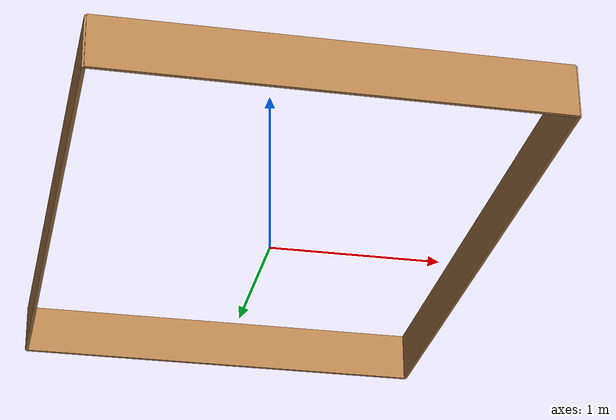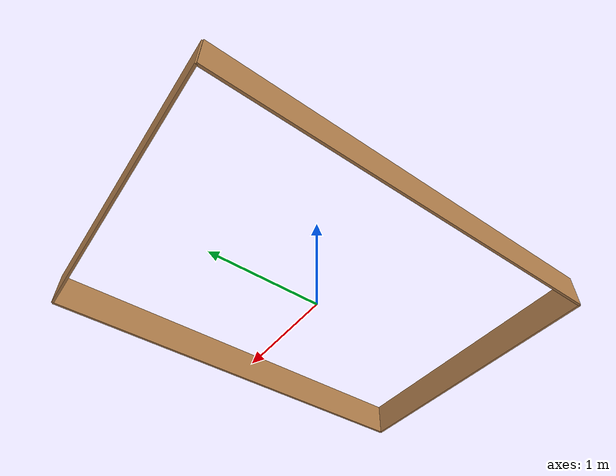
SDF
<?xml version="1.0"?>
<sdf version="1.6">
	<model name="christmas_walls">
		<link name="Wall_North">
			<pose frame=''>1.25 0 0 0 0 -1.5708</pose>
			<self_collide>0</self_collide>
			<kinematic>0</kinematic>

			<visual name="Wall_North_Visual">
				<pose frame=''>0 0 0.15 0 0 0</pose>

				<geometry>
					<box>
						<size>3.5 0.02 0.3</size>
					</box>
				</geometry>

				<material>
					<script>
						<uri>file://media/materials/scripts/gazebo.material</uri>
						<name>Gazebo/Wood</name>
					</script>

					<ambient>1 1 1 1</ambient>
					<diffuse>1 1 1 1</diffuse>
					<specular>0.2 0.2 0.2 1</specular>
					<emissive>0 0 0 1</emissive>
				</material>

				<cast_shadows>1</cast_shadows>
				<transparency>0</transparency>
			</visual>

			<collision name="Wall_North_Collision">
				<laser_retro>0</laser_retro>
				<max_contacts>10</max_contacts>
				<pose frame=''>0 0 0.15 0 0 0</pose>

				<geometry>
					<box>
						<size>3.5 0.02 0.3</size>
					</box>
				</geometry>

				<surface>
          			<friction>
            			<ode>
              				<mu>10</mu>
              				<mu2>10</mu2>
              				<fdir1>0 0 0</fdir1>
              				<slip1>0</slip1>
              				<slip2>0</slip2>
            			</ode>
            			<torsional>
              				<coefficient>1</coefficient>
              				<patch_radius>0</patch_radius>
              				<surface_radius>0</surface_radius>
              				<use_patch_radius>1</use_patch_radius>
              				<ode>
	                			<slip>0</slip>
              				</ode>
            			</torsional>
          			</friction>

          			<bounce>
            			<restitution_coefficient>0</restitution_coefficient>
            			<threshold>1e+06</threshold>
          			</bounce>

          			<contact>
            			<collide_without_contact>0</collide_without_contact>
            			<collide_without_contact_bitmask>1</collide_without_contact_bitmask>
            			<collide_bitmask>1</collide_bitmask>
            			<ode>
              				<soft_cfm>0</soft_cfm>
              				<soft_erp>0.2</soft_erp>
              				<kp>1e+13</kp>
              				<kd>1</kd>
              				<max_vel>0.01</max_vel>
              				<min_depth>0</min_depth>
            			</ode>
            			<bullet>
              				<split_impulse>1</split_impulse>
              				<split_impulse_penetration_threshold>-0.01</split_impulse_penetration_threshold>
              				<soft_cfm>0</soft_cfm>
              				<soft_erp>0.2</soft_erp>
              				<kp>1e+13</kp>
              				<kd>1</kd>
            			</bullet>
          			</contact>
        		</surface>
			</collision>

			<inertial>
			  <pose>0 0 0.15 0 0 0</pose>
			  <mass>1</mass>
			  <inertia>
			  	<ixx>0.0199</ixx>
			  	<iyy>1.019</iyy>
			  	<izz>1</izz>
			  	<ixy>0</ixy>
			  	<ixz>0</ixz>
			  	<iyz>0</iyz>
			  </inertia>
			</inertial>
		</link>

		<link name="Wall_South">
			<pose frame=''>-1.25 0 0 0 0 1.5708</pose>
			<self_collide>0</self_collide>
			<kinematic>0</kinematic>

			<visual name="Wall_South_Visual">
				<pose frame=''>0 0 0.15 0 0 0</pose>

				<geometry>
					<box>
						<size>3.5 0.02 0.3</size>
					</box>
				</geometry>

				<material>
					<script>
						<uri>file://media/materials/scripts/gazebo.material</uri>
						<name>Gazebo/Wood</name>
					</script>

					<ambient>1 1 1 1</ambient>
					<diffulse>1 1 1 1</diffulse>
					<specular>0.2 0.2 0.2 1</specular>
					<emissive>0 0 0 1</emissive>
				</material>

				<cast_shadows>1</cast_shadows>
				<transparency>0</transparency>
			</visual>

			<collision name="Wall_South_Collision">
				<laser_retro>0</laser_retro>
				<max_contacts>10</max_contacts>
				<pose frame=''>0 0 0.15 0 0 0</pose>

				<geometry>
					<box>
						<size>3.5 0.02 0.3</size>
					</box>
				</geometry>

				<surface>
          			<friction>
            			<ode>
              				<mu>1</mu>
              				<mu2>1</mu2>
              				<fdir1>0 0 0</fdir1>
              				<slip1>0</slip1>
              				<slip2>0</slip2>
            			</ode>
            			<torsional>
              				<coefficient>1</coefficient>
              				<patch_radius>0</patch_radius>
              				<surface_radius>0</surface_radius>
              				<use_patch_radius>1</use_patch_radius>
              				<ode>
	                			<slip>0</slip>
              				</ode>
            			</torsional>
          			</friction>

          			<bounce>
            			<restitution_coefficient>0</restitution_coefficient>
            			<threshold>1e+06</threshold>
          			</bounce>

          			<contact>
            			<collide_without_contact>0</collide_without_contact>
            			<collide_without_contact_bitmask>1</collide_without_contact_bitmask>
            			<collide_bitmask>1</collide_bitmask>
            			<ode>
              				<soft_cfm>0</soft_cfm>
              				<soft_erp>0.2</soft_erp>
              				<kp>1e+13</kp>
              				<kd>1</kd>
              				<max_vel>0.01</max_vel>
              				<min_depth>0</min_depth>
            			</ode>
            			<bullet>
              				<split_impulse>1</split_impulse>
              				<split_impulse_penetration_threshold>-0.01</split_impulse_penetration_threshold>
              				<soft_cfm>0</soft_cfm>
              				<soft_erp>0.2</soft_erp>
              				<kp>1e+13</kp>
              				<kd>1</kd>
            			</bullet>
          			</contact>
        		</surface>
			</collision>
			<inertial>
			  <pose>0 0 0.15 0 0 0</pose>
			  <mass>1</mass>
			  <inertia>
			  	<ixx>0.0199</ixx>
			  	<iyy>1.019</iyy>
			  	<izz>1.0</izz>
			  	<ixy>0</ixy>
			  	<ixz>0</ixz>
			  	<iyz>0</iyz>
			  </inertia>
			</inertial>
		</link>

		<link name="Wall_West">
			<pose frame=''>0 1.75 0 0 0 0</pose>
			<self_collide>0</self_collide>
			<kinematic>0</kinematic>

			<visual name="Wall_West_Visual">
				<pose frame=''>0 0 0.15 0 0 0</pose>

				<geometry>
					<box>
						<size>2.5 0.02 0.3</size>
					</box>
				</geometry>

				<material>
					<script>
						<uri>file://media/materials/scripts/gazebo.material</uri>
						<name>Gazebo/Wood</name>
					</script>

					<ambient>1 1 1 1</ambient>
					<diffulse>1 1 1 1</diffulse>
					<specular>0.2 0.2 0.2 1</specular>
					<emissive>0 0 0 1</emissive>
				</material>

				<cast_shadows>1</cast_shadows>
				<transparency>0</transparency>
			</visual>

			<collision name="Wall_West_Collision">
				<laser_retro>0</laser_retro>
				<max_contacts>10</max_contacts>
				<pose frame=''>0 0 0.15 0 0 0</pose>

				<geometry>
					<box>
						<size>2.5 0.02 0.3</size>
					</box>
				</geometry>

				<surface>
          			<friction>
            			<ode>
              				<mu>1</mu>
              				<mu2>1</mu2>
              				<fdir1>0 0 0</fdir1>
              				<slip1>0</slip1>
              				<slip2>0</slip2>
            			</ode>
            			<torsional>
              				<coefficient>1</coefficient>
              				<patch_radius>0</patch_radius>
              				<surface_radius>0</surface_radius>
              				<use_patch_radius>1</use_patch_radius>
              				<ode>
	                			<slip>0</slip>
              				</ode>
            			</torsional>
          			</friction>

          			<bounce>
            			<restitution_coefficient>0</restitution_coefficient>
            			<threshold>1e+06</threshold>
          			</bounce>

          			<contact>
            			<collide_without_contact>0</collide_without_contact>
            			<collide_without_contact_bitmask>1</collide_without_contact_bitmask>
            			<collide_bitmask>1</collide_bitmask>
            			<ode>
              				<soft_cfm>0</soft_cfm>
              				<soft_erp>0.2</soft_erp>
              				<kp>1e+13</kp>
              				<kd>1</kd>
              				<max_vel>0.01</max_vel>
              				<min_depth>0</min_depth>
            			</ode>
            			<bullet>
              				<split_impulse>1</split_impulse>
              				<split_impulse_penetration_threshold>-0.01</split_impulse_penetration_threshold>
              				<soft_cfm>0</soft_cfm>
              				<soft_erp>0.2</soft_erp>
              				<kp>1e+13</kp>
              				<kd>1</kd>
            			</bullet>
          			</contact>
        		</surface>
			</collision>
			<inertial>
			  <pose>0 0 0.15 0 0 0</pose>
			  <mass>1</mass>
			  <inertia>
			  	<ixx>0.0199</ixx>
			  	<iyy>1.019</iyy>
			  	<izz>1.0</izz>
			  	<ixy>0</ixy>
			  	<ixz>0</ixz>
			  	<iyz>0</iyz>
			  </inertia>
			</inertial>
		</link>

		<link name="Wall_East">
			<pose frame=''>0 -1.75 0 0 0 0</pose>
			<self_collide>0</self_collide>
			<kinematic>0</kinematic>

			<visual name="Wall_East_Visual">
				<pose frame=''>0 0 0.15 0 0 0</pose>

				<geometry>
					<box>
						<size>2.5 0.02 0.3</size>
					</box>
				</geometry>

				<material>
					<script>
						<uri>file://media/materials/scripts/gazebo.material</uri>
						<name>Gazebo/Wood</name>
					</script>

					<ambient>1 1 1 1</ambient>
					<diffulse>1 1 1 1</diffulse>
					<specular>0.2 0.2 0.2 1</specular>
					<emissive>0 0 0 1</emissive>
				</material>

				<cast_shadows>1</cast_shadows>
				<transparency>0</transparency>
			</visual>

			<collision name="Wall_East_Collision">
				<laser_retro>0</laser_retro>
				<max_contacts>10</max_contacts>
				<pose frame=''>0 0 0.15 0 0 0</pose>

				<geometry>
					<box>
						<size>2.5 0.02 0.3</size>
					</box>
				</geometry>

				<surface>
          			<friction>
            			<ode>
              				<mu>1</mu>
              				<mu2>1</mu2>
              				<fdir1>0 0 0</fdir1>
              				<slip1>0</slip1>
              				<slip2>0</slip2>
            			</ode>
            			<torsional>
              				<coefficient>1</coefficient>
              				<patch_radius>0</patch_radius>
              				<surface_radius>0</surface_radius>
              				<use_patch_radius>1</use_patch_radius>
              				<ode>
	                			<slip>0</slip>
              				</ode>
            			</torsional>
          			</friction>

          			<bounce>
            			<restitution_coefficient>0</restitution_coefficient>
            			<threshold>1e+06</threshold>
          			</bounce>

          			<contact>
            			<collide_without_contact>0</collide_without_contact>
            			<collide_without_contact_bitmask>1</collide_without_contact_bitmask>
            			<collide_bitmask>1</collide_bitmask>
            			<ode>
              				<soft_cfm>0</soft_cfm>
              				<soft_erp>0.2</soft_erp>
              				<kp>1e+13</kp>
              				<kd>1</kd>
              				<max_vel>0.01</max_vel>
              				<min_depth>0</min_depth>
            			</ode>
            			<bullet>
              				<split_impulse>1</split_impulse>
              				<split_impulse_penetration_threshold>-0.01</split_impulse_penetration_threshold>
              				<soft_cfm>0</soft_cfm>
              				<soft_erp>0.2</soft_erp>
              				<kp>1e+13</kp>
              				<kd>1</kd>
            			</bullet>
          			</contact>
        		</surface>
			</collision>
			<inertial>
			  <pose>0 0 0.15 0 0 0</pose>
			  <mass>1</mass>
			  <inertia>
			  	<ixx>0.0199</ixx>
			  	<iyy>1.019</iyy>
			  	<izz>1.0</izz>
			  	<ixy>0</ixy>
			  	<ixz>0</ixz>
			  	<iyz>0</iyz>
			  </inertia>
			</inertial>
		</link>

		<joint name="north_east_joint" type="fixed">
			<parent>Wall_North</parent>
			<child>Wall_East</child>
		</joint>
		<joint name="north_south_joint" type="fixed">
			<parent>Wall_North</parent>
			<child>Wall_South</child>
		</joint>
		<joint name="north_west_joint" type="fixed">
			<parent>Wall_North</parent>
			<child>Wall_West</child>
		</joint>

	</model>
</sdf>
